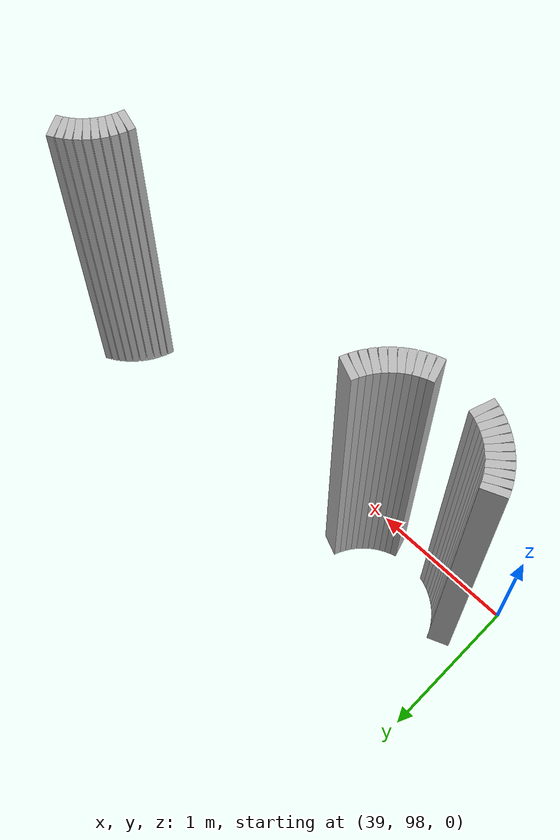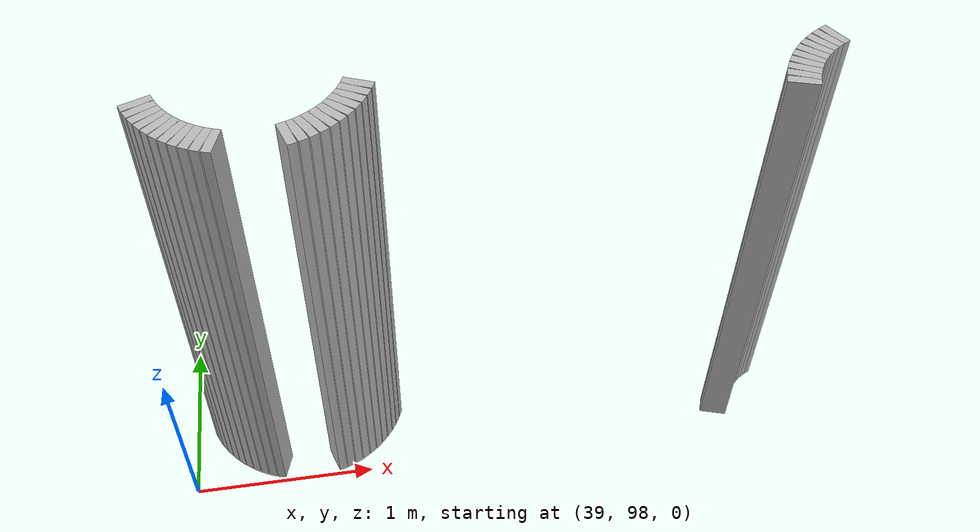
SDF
<sdf version="1.6">
 <model name="sps_1301">
  <static>1</static>
  <allow_auto_disable>0</allow_auto_disable>
  <link name="Wall747">
   <collision name="collision"><geometry><box><size>0.0454804 0.15 2.5</size></box></geometry></collision>
   <visual name="visual">
    <geometry><box><size>0.0454804 0.15 2.5</size></box></geometry>
    <transparency>0.0</transparency>
   </visual>
   <pose>42.0937 98.1116 1.25 0 -0 1.26687</pose>
  </link>
  <link name="Wall748">
   <collision name="collision"><geometry><box><size>0.0452271 0.15 2.5</size></box></geometry></collision>
   <visual name="visual">
    <geometry><box><size>0.0452271 0.15 2.5</size></box></geometry>
    <transparency>0.0</transparency>
   </visual>
   <pose>42.1092 98.1542 1.25 0 -0 1.17601</pose>
  </link>
  <link name="Wall749">
   <collision name="collision"><geometry><box><size>0.0454228 0.15 2.5</size></box></geometry></collision>
   <visual name="visual">
    <geometry><box><size>0.0454228 0.15 2.5</size></box></geometry>
    <transparency>0.0</transparency>
   </visual>
   <pose>42.1283 98.1953 1.25 0 -0 1.09633</pose>
  </link>
  <link name="Wall750">
   <collision name="collision"><geometry><box><size>0.0454409 0.15 2.5</size></box></geometry></collision>
   <visual name="visual">
    <geometry><box><size>0.0454409 0.15 2.5</size></box></geometry>
    <transparency>0.0</transparency>
   </visual>
   <pose>42.1509 98.2346 1.25 0 -0 0.998813</pose>
  </link>
  <link name="Wall751">
   <collision name="collision"><geometry><box><size>0.0454008 0.15 2.5</size></box></geometry></collision>
   <visual name="visual">
    <geometry><box><size>0.0454008 0.15 2.5</size></box></geometry>
    <transparency>0.0</transparency>
   </visual>
   <pose>42.1771 98.2717 1.25 0 -0 0.916002</pose>
  </link>
  <link name="Wall752">
   <collision name="collision"><geometry><box><size>0.0452735 0.15 2.5</size></box></geometry></collision>
   <visual name="visual">
    <geometry><box><size>0.0452735 0.15 2.5</size></box></geometry>
    <transparency>0.0</transparency>
   </visual>
   <pose>42.2062 98.3064 1.25 0 -0 0.829263</pose>
  </link>
  <link name="Wall753">
   <collision name="collision"><geometry><box><size>0.0453148 0.15 2.5</size></box></geometry></collision>
   <visual name="visual">
    <geometry><box><size>0.0453148 0.15 2.5</size></box></geometry>
    <transparency>0.0</transparency>
   </visual>
   <pose>42.2382 98.3384 1.25 0 -0 0.742526</pose>
  </link>
  <link name="Wall754">
   <collision name="collision"><geometry><box><size>0.0453637 0.15 2.5</size></box></geometry></collision>
   <visual name="visual">
    <geometry><box><size>0.0453637 0.15 2.5</size></box></geometry>
    <transparency>0.0</transparency>
   </visual>
   <pose>42.2728 98.3675 1.25 0 -0 0.653727</pose>
  </link>
  <link name="Wall755">
   <collision name="collision"><geometry><box><size>0.0454964 0.15 2.5</size></box></geometry></collision>
   <visual name="visual">
    <geometry><box><size>0.0454964 0.15 2.5</size></box></geometry>
    <transparency>0.0</transparency>
   </visual>
   <pose>42.3101 98.3935 1.25 0 -0 0.566421</pose>
  </link>
  <link name="Wall756">
   <collision name="collision"><geometry><box><size>0.04526 0.15 2.5</size></box></geometry></collision>
   <visual name="visual">
    <geometry><box><size>0.04526 0.15 2.5</size></box></geometry>
    <transparency>0.0</transparency>
   </visual>
   <pose>42.3494 98.4161 1.25 0 -0 0.476313</pose>
  </link>
  <link name="Wall1029">
   <collision name="collision"><geometry><box><size>0.0452834 0.15 2.5</size></box></geometry></collision>
   <visual name="visual">
    <geometry><box><size>0.0452834 0.15 2.5</size></box></geometry>
    <transparency>0.0</transparency>
   </visual>
   <pose>40.1376 98.3942 1.25 0 0 -1.96507</pose>
  </link>
  <link name="Wall1030">
   <collision name="collision"><geometry><box><size>0.0453724 0.15 2.5</size></box></geometry></collision>
   <visual name="visual">
    <geometry><box><size>0.0453724 0.15 2.5</size></box></geometry>
    <transparency>0.0</transparency>
   </visual>
   <pose>40.1184 98.3532 1.25 0 0 -2.05189</pose>
  </link>
  <link name="Wall1031">
   <collision name="collision"><geometry><box><size>0.0454964 0.15 2.5</size></box></geometry></collision>
   <visual name="visual">
    <geometry><box><size>0.0454964 0.15 2.5</size></box></geometry>
    <transparency>0.0</transparency>
   </visual>
   <pose>40.0957 98.3139 1.25 0 0 -2.13722</pose>
  </link>
  <link name="Wall1032">
   <collision name="collision"><geometry><box><size>0.0453637 0.15 2.5</size></box></geometry></collision>
   <visual name="visual">
    <geometry><box><size>0.0453637 0.15 2.5</size></box></geometry>
    <transparency>0.0</transparency>
   </visual>
   <pose>40.0697 98.2767 1.25 0 0 -2.22452</pose>
  </link>
  <link name="Wall1033">
   <collision name="collision"><geometry><box><size>0.0453148 0.15 2.5</size></box></geometry></collision>
   <visual name="visual">
    <geometry><box><size>0.0453148 0.15 2.5</size></box></geometry>
    <transparency>0.0</transparency>
   </visual>
   <pose>40.0405 98.242 1.25 0 0 -2.31332</pose>
  </link>
  <link name="Wall1034">
   <collision name="collision"><geometry><box><size>0.0452735 0.15 2.5</size></box></geometry></collision>
   <visual name="visual">
    <geometry><box><size>0.0452735 0.15 2.5</size></box></geometry>
    <transparency>0.0</transparency>
   </visual>
   <pose>40.0085 98.21 1.25 0 0 -2.40006</pose>
  </link>
  <link name="Wall1035">
   <collision name="collision"><geometry><box><size>0.0454008 0.15 2.5</size></box></geometry></collision>
   <visual name="visual">
    <geometry><box><size>0.0454008 0.15 2.5</size></box></geometry>
    <transparency>0.0</transparency>
   </visual>
   <pose>39.9738 98.1809 1.25 0 0 -2.4868</pose>
  </link>
  <link name="Wall1036">
   <collision name="collision"><geometry><box><size>0.0454637 0.15 2.5</size></box></geometry></collision>
   <visual name="visual">
    <geometry><box><size>0.0454637 0.15 2.5</size></box></geometry>
    <transparency>0.0</transparency>
   </visual>
   <pose>39.9366 98.1549 1.25 0 0 -2.5763</pose>
  </link>
  <link name="Wall1037">
   <collision name="collision"><geometry><box><size>0.0452338 0.15 2.5</size></box></geometry></collision>
   <visual name="visual">
    <geometry><box><size>0.0452338 0.15 2.5</size></box></geometry>
    <transparency>0.0</transparency>
   </visual>
   <pose>39.8974 98.1323 1.25 0 0 -2.66346</pose>
  </link>
  <link name="Wall1038">
   <collision name="collision"><geometry><box><size>0.0455089 0.15 2.5</size></box></geometry></collision>
   <visual name="visual">
    <geometry><box><size>0.0455089 0.15 2.5</size></box></geometry>
    <transparency>0.0</transparency>
   </visual>
   <pose>39.8563 98.1132 1.25 0 0 -2.74938</pose>
  </link>
  <link name="Wall1039">
   <collision name="collision"><geometry><box><size>0.0452475 0.15 2.5</size></box></geometry></collision>
   <visual name="visual">
    <geometry><box><size>0.0452475 0.15 2.5</size></box></geometry>
    <transparency>0.0</transparency>
   </visual>
   <pose>39.8137 98.0977 1.25 0 0 -2.83605</pose>
  </link>
  <link name="Wall1046">
   <collision name="collision"><geometry><box><size>0.0453057 0.15 2.5</size></box></geometry></collision>
   <visual name="visual">
    <geometry><box><size>0.0453057 0.15 2.5</size></box></geometry>
    <transparency>0.0</transparency>
   </visual>
   <pose>39.5012 98.0977 1.25 0 -0 2.83646</pose>
  </link>
  <link name="Wall1047">
   <collision name="collision"><geometry><box><size>0.0454525 0.15 2.5</size></box></geometry></collision>
   <visual name="visual">
    <geometry><box><size>0.0454525 0.15 2.5</size></box></geometry>
    <transparency>0.0</transparency>
   </visual>
   <pose>39.4586 98.1132 1.25 0 -0 2.74887</pose>
  </link>
  <link name="Wall1048">
   <collision name="collision"><geometry><box><size>0.0453183 0.15 2.5</size></box></geometry></collision>
   <visual name="visual">
    <geometry><box><size>0.0453183 0.15 2.5</size></box></geometry>
    <transparency>0.0</transparency>
   </visual>
   <pose>39.4176 98.1324 1.25 0 -0 2.65987</pose>
  </link>
  <link name="Wall1049">
   <collision name="collision"><geometry><box><size>0.045342 0.15 2.5</size></box></geometry></collision>
   <visual name="visual">
    <geometry><box><size>0.045342 0.15 2.5</size></box></geometry>
    <transparency>0.0</transparency>
   </visual>
   <pose>39.3784 98.1551 1.25 0 -0 2.57301</pose>
  </link>
  <link name="Wall1050">
   <collision name="collision"><geometry><box><size>0.0453637 0.15 2.5</size></box></geometry></collision>
   <visual name="visual">
    <geometry><box><size>0.0453637 0.15 2.5</size></box></geometry>
    <transparency>0.0</transparency>
   </visual>
   <pose>39.3413 98.1811 1.25 0 -0 2.48787</pose>
  </link>
  <link name="Wall1051">
   <collision name="collision"><geometry><box><size>0.0452735 0.15 2.5</size></box></geometry></collision>
   <visual name="visual">
    <geometry><box><size>0.0452735 0.15 2.5</size></box></geometry>
    <transparency>0.0</transparency>
   </visual>
   <pose>39.3066 98.2102 1.25 0 -0 2.40006</pose>
  </link>
  <link name="Wall1052">
   <collision name="collision"><geometry><box><size>0.0454949 0.15 2.5</size></box></geometry></collision>
   <visual name="visual">
    <geometry><box><size>0.0454949 0.15 2.5</size></box></geometry>
    <transparency>0.0</transparency>
   </visual>
   <pose>39.2746 98.2423 1.25 0 -0 2.30969</pose>
  </link>
  <link name="Wall1053">
   <collision name="collision"><geometry><box><size>0.0451701 0.15 2.5</size></box></geometry></collision>
   <visual name="visual">
    <geometry><box><size>0.0451701 0.15 2.5</size></box></geometry>
    <transparency>0.0</transparency>
   </visual>
   <pose>39.2454 98.277 1.25 0 -0 2.22781</pose>
  </link>
  <link name="Wall1054">
   <collision name="collision"><geometry><box><size>0.0454964 0.15 2.5</size></box></geometry></collision>
   <visual name="visual">
    <geometry><box><size>0.0454964 0.15 2.5</size></box></geometry>
    <transparency>0.0</transparency>
   </visual>
   <pose>39.2194 98.3141 1.25 0 -0 2.13722</pose>
  </link>
  <link name="Wall1055">
   <collision name="collision"><geometry><box><size>0.0453724 0.15 2.5</size></box></geometry></collision>
   <visual name="visual">
    <geometry><box><size>0.0453724 0.15 2.5</size></box></geometry>
    <transparency>0.0</transparency>
   </visual>
   <pose>39.1967 98.3534 1.25 0 -0 2.05189</pose>
  </link>
  <link name="Wall1056">
   <collision name="collision"><geometry><box><size>0.0453827 0.15 2.5</size></box></geometry></collision>
   <visual name="visual">
    <geometry><box><size>0.0453827 0.15 2.5</size></box></geometry>
    <transparency>0.0</transparency>
   </visual>
   <pose>39.1776 98.3945 1.25 0 -0 1.95979</pose>
  </link>
 </model>
</sdf>
